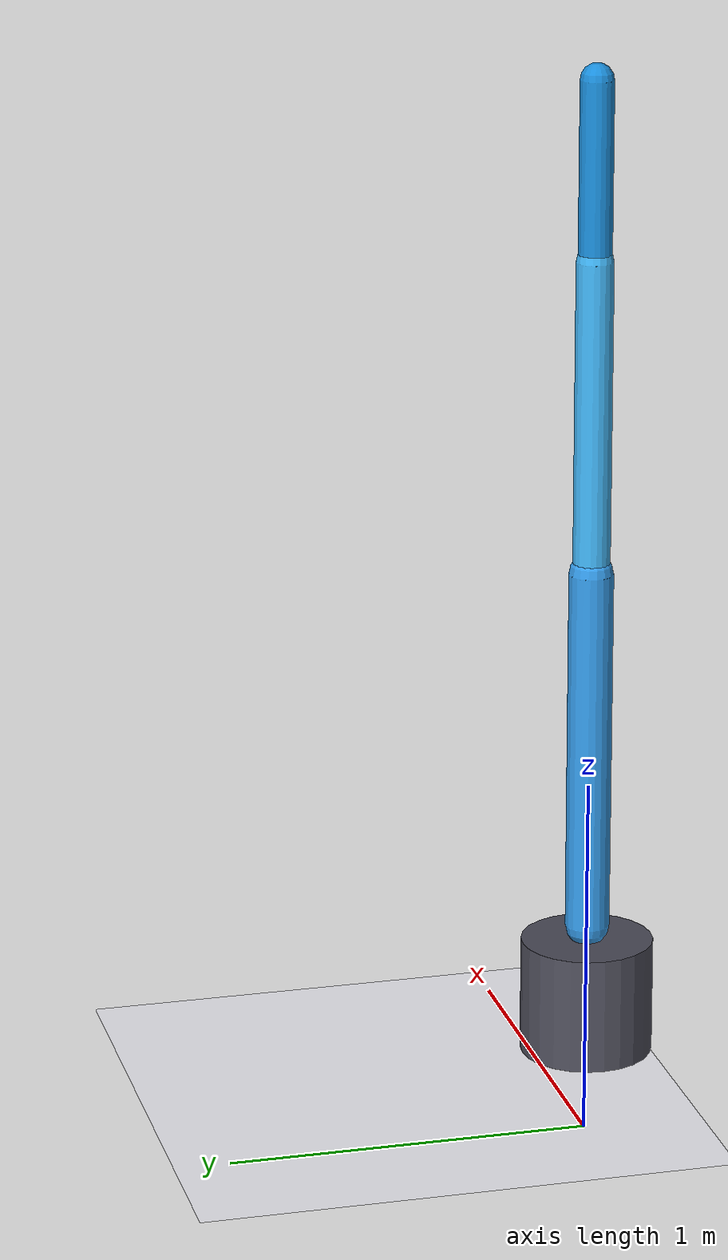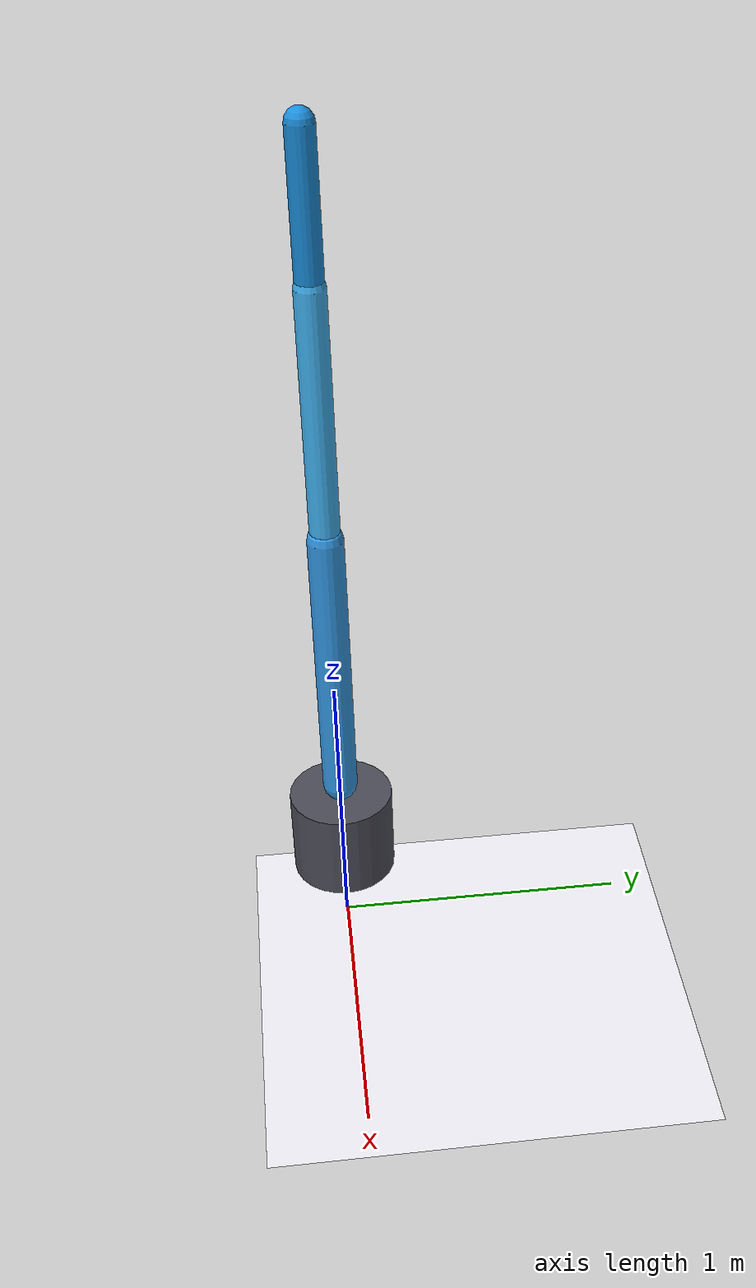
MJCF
<mujoco model="arm4_demo">
  <compiler angle="radian" inertiafromgeom="true"/>
  <option timestep="0.003" gravity="0 0 -9.81" integrator="RK4"/>

  <default>
    <joint damping="1.2" armature="0.08" limited="true"/>
    <geom friction="0.8 0.1 0.1" rgba="0.2 0.6 0.9 1"/>
    <position kp="35"/>
  </default>

  <worldbody>
    <light pos="0 0 4"/>
    <geom name="floor" type="plane" size="4 4 0.1" rgba="0.95 0.95 0.98 1"/>

    <body name="base" pos="0 0 0.4">
      <geom type="cylinder" size="0.18 0.16" rgba="0.3 0.3 0.35 1"/>
      <joint name="j0" type="hinge" axis="0 0 1" range="-2.6 2.6"/>

      <body name="link1" pos="0 0 0.2">
        <geom type="capsule" fromto="0 0 0 0 0 1.0" size="0.06"/>
        <joint name="j1" type="hinge" axis="0 1 0" range="-2.6 2.6"/>

        <body name="link2" pos="0 0 1.0">
          <geom type="capsule" fromto="0 0 0 0 0 0.85" size="0.05" rgba="0.25 0.7 0.95 1"/>
          <joint name="j2" type="hinge" axis="0 1 0" range="-2.6 2.6"/>

          <body name="link3" pos="0 0 0.85">
            <geom type="capsule" fromto="0 0 0 0 0 0.48" size="0.045" rgba="0.1 0.55 0.85 1"/>
            <joint name="j3" type="hinge" axis="0 1 0" range="-2.6 2.6"/>
          </body>
        </body>
      </body>
    </body>
  </worldbody>

  <actuator>
    <position name="a0" joint="j0"/>
    <position name="a1" joint="j1"/>
    <position name="a2" joint="j2"/>
    <position name="a3" joint="j3"/>
  </actuator>
</mujoco>
